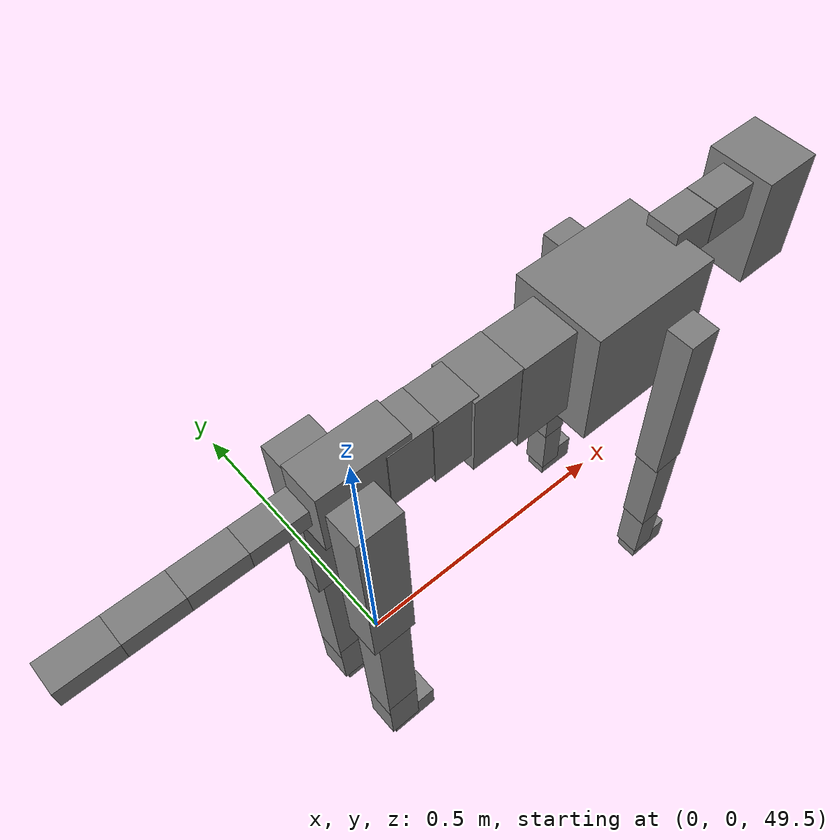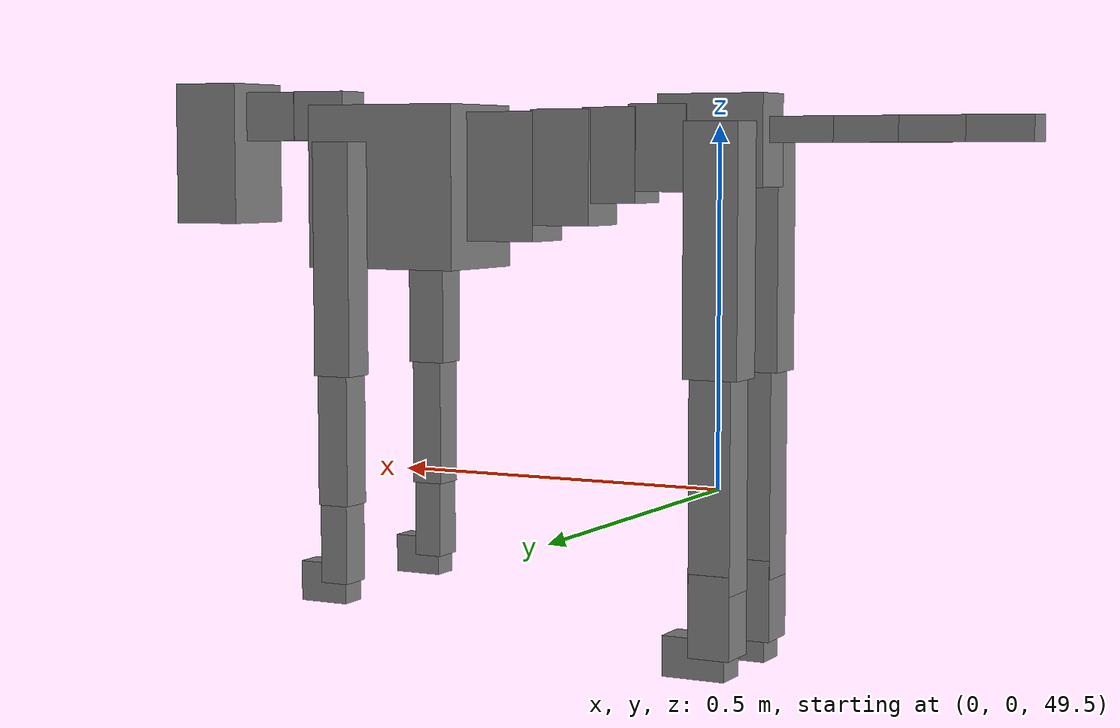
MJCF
<mujoco model="dog">

    <default>
        <joint armature="0.02" stiffness="1" damping="0.2" limited="true"/>
        <geom condim="3" friction="1 0.05 0.05" margin="0.01"/>
        <motor ctrllimited="true" ctrlrange="-1.0 1.0" forcelimited="true" gear="50"/>
    </default>

    <compiler inertiafromgeom="true" angle="radian"/>

    <option timestep="0.016" iterations="50" tolerance="1e-10" solver="Newton" jacobian="dense" cone="pyramidal"/>

    <size nconmax="20000" njmax="60000" nstack="5000000"/>
    <visual>
        <map force="0.1" zfar="30"/>
        <rgba haze="0.15 0.25 0.35 1"/>
        <quality shadowsize="2048"/>
        <global offwidth="800" offheight="800"/>
    </visual>

    <asset>
        <texture type="skybox" builtin="gradient" rgb1="0.3 0.5 0.7" rgb2="0 0 0" width="512" height="512"/>
        <texture name="texplane" type="2d" builtin="checker" rgb1=".2 .3 .4" rgb2=".1 0.15 0.2" width="512" height="512"
                 mark="cross" markrgb=".8 .8 .8"/>
        <texture name="texgeom" type="cube" builtin="flat" mark="cross" width="127" height="1278" rgb1="0.8 0.6 0.4"
                 rgb2="0.8 0.6 0.4" markrgb="1 1 1" random="0.01"/>

        <material name="matplane" reflectance="0.3" texture="texplane" texrepeat="1 1" texuniform="true"/>
        <material name="matgeom" texture="texgeom" texuniform="true" rgba="0.8 0.6 .4 1"/>
    </asset>

    <worldbody>
        <geom name="floor" pos="0 0 0" size="0 0 .25" type="plane" material="matplane" condim="3"/>

        <light directional="false" diffuse=".2 .2 .2" specular="0 0 0" pos="0 0 5" dir="0 0 -1" castshadow="false"/>
        <light mode="targetbodycom" target="torso" directional="false" diffuse=".8 .8 .8" specular="0.3 0.3 0.3"
               pos="0 0 4.0" dir="0 0 -1"/>

        <body name="root" pos="0 0 50">
            <freejoint name="root_1"/>
            <geom type="box" pos="0 0 -0.02" size="0.0774  0.0358  0.063" density="2030"/>

            <body name="spine1" pos="0.054 0 0">
                <joint name="spine1_y" axis="0 1 0" range="0 0.7" limited="true"/>
                <geom type="box" pos="0.02375 0 -0.03" size="0.04375  0.0375  0.05985" density="2030"/>

                <body name="spine2" pos="0.0612 0 0">
                    <joint name="spine2_y" axis="0 1 0" range="-0.15 0.15" limited="true"/>
                    <geom type="box" pos="0.03555  0  -0.04" size="0.04055  0.039  0.06615" density="2030"/>

                    <body name="spine3" pos="0.0730 0 0">
                        <joint name="spine3_y" axis="0 1 0" range="-0.15 0.15" limited="true"/>
                        <geom type="box" pos="0.03555  0  -0.057" size="0.04555  0.0445  0.081" density="2030"/>

                        <body name="spine4" pos="0.0780 0 0">
                            <joint name="spine4_y" axis="0 1 0" range="-0.15 0.15" limited="true"/>
                            <geom type="box" pos="0.05265  0  -0.07" size="0.05265  0.045  0.09135" density="2030"/>

                            <body name="torso" pos="0.1082 0 0">
                                <joint name="torso_y" axis="0 1 0" range="-0.15 0.15" limited="true"/>
                                <geom type="box" pos="0.11925  0  -0.085" size="0.11925  0.085  0.11745"
                                      density="2030"/>

                                <body name="neck1" pos="0.2160  0   0.0180">
                                    <joint name="neck1_y" axis="0 1 0" range="-1.2  -1" limited="true"/>
                                    <geom type="box" pos="0.0423  0  0" size="0.0423  0.03  0.036" density="2325"/>

                                    <body name="neck2" pos="0.0853  0  0">
                                        <joint name="neck2_y" axis="0 1 0" range="0.1  0" limited="true"/>
                                        <geom type="box" pos="0.0423  0  0" size="0.0423  0.03  0.036" density="2325"/>

                                        <body name="head" pos="0.0853  0  0">
                                            <joint name="head_y" axis="0 1 0" range="-0.3  -0.2" limited="true"/>
                                            <geom type="box" pos="0.0531  0  -0.055" size="0.0531  0.06  0.1044"
                                                  density="4030"/>

                                        </body>
                                    </body>
                                </body>

                                <body name="front_shoulder" pos="0.156  0   -0.0480">
                                    <joint name="front_shoulder_y" axis="0 1 0" range="-1 1.5" limited="true"/>
                                    <geom type="box" pos="0 0.13 -0.1391" size="0.0292  0.0250  0.1658" density="1158"/>
                                    <geom type="box" pos="0 -0.13 -0.1391" size="0.0292  0.0250  0.1658"
                                          density="1158"/>

                                    <body name="front_elbow" pos="0  0  -0.2782">
                                        <joint name="front_elbow_y" axis="0 1 0" range="-2 0" limited="true"/>
                                        <geom type="box" pos="0 0.13 -0.1059" size="0.0238  0.0244  0.1059"
                                              density="1081"/>
                                        <geom type="box" pos="0 -0.13 -0.1059" size="0.0238  0.0244  0.1059"
                                              density="1081"/>

                                        <body name="front_wrist" pos="0  0  -0.2117">
                                            <joint name="front_wrist_y" axis="0 1 0" range="-0.2 0" limited="true"/>
                                            <geom type="box" pos="0 0.13 -0.0495" size="0.0213  0.0236  0.0626"
                                                  density="1664"/>
                                            <geom type="box" pos="0 -0.13 -0.0495" size="0.0213  0.0236  0.0626"
                                                  density="1664"/>

                                            <body name="front_finger_end" pos="0  0  -0.0990">
                                                <joint name="front_finger_y" axis="0 1 0" range="-0.4 1"
                                                       limited="true"/>
                                                <geom type="box" pos="0.0201  0.13  -0.0135"
                                                      size="0.0369  0.0201  0.0285" density="1515"/>
                                                <geom type="box" pos="0.0201  -0.13  -0.0135"
                                                      size="0.0369  0.0201  0.0285" density="1515"/>

                                            </body>

                                        </body>
                                    </body>
                                </body>

                            </body>
                        </body>
                    </body>
                </body>
            </body>

            <body name="back_hip" pos="-0.03 0 -0.018">
                <joint name="back_hip_y" axis="0 1 0" range="-1.5 0.3" limited="true"/>
                <geom type="box" pos="0 0.07 -0.1488" size="0.0394  0.0309  0.1716" density="1154"/>
                <geom type="box" pos="0 -0.07 -0.1488" size="0.0394  0.0309  0.1716" density="1154"/>

                <body name="back_knee" pos="0  0  -0.2975">
                    <joint name="back_knee_y" axis="0 1 0" range="0 2.8" limited="true"/>
                    <geom type="box" pos="0 0.07 -0.1482" size="0.0302  0.0298  0.1638" density="1227"/>
                    <geom type="box" pos="0 -0.07 -0.1482" size="0.0302  0.0298  0.1638" density="1227"/>

                    <body name="back_ankle" pos="0  0  -0.2964">
                        <joint name="back_ankle_y" axis="0 1 0" range="-2.2 0" limited="true"/>
                        <geom type="box" pos="0 0.07 -0.0460" size="0.0300  0.0300  0.0573" density="1284"/>
                        <geom type="box" pos="0 -0.07 -0.0460" size="0.0300  0.0300  0.0573" density="1284"/>

                        <body name="back_toe_end" pos="0  0  -0.0920">
                            <joint name="back_toe_y" axis="0 1 0" range="-0.4 1" limited="true"/>
                            <geom type="box" pos="0.0249  0.07  -0.0131" size="0.0457  0.0249  0.0281" density="1515"/>
                            <geom type="box" pos="0.0249  -0.07  -0.0131" size="0.0457  0.0249  0.0281" density="1515"/>

                        </body>
                    </body>
                </body>
            </body>

            <body name="tail1" pos="-0.074 0 -0.006">
                <joint name="tail1_y" axis="0 1 0" range="-0.2 0.2" limited="true"/>
                <geom type="box" pos="-0.0536  0  0" size="0.045  0.025  0.0175" density="1587"/>

                <body name="tail2" pos="-0.09 0 0">
                    <joint name="tail2_y" axis="0 1 0" range="-0.2 0.2" limited="true"/>
                    <geom type="box" pos="-0.0536  0  0" size="0.045  0.025  0.0175" density="1587"/>

                    <body name="tail3" pos="-0.09 0 0">
                        <joint name="tail3_y" axis="0 1 0" range="-0.2 0.2" limited="true"/>
                        <geom type="box" pos="-0.0536  0  0" size="0.045  0.025  0.0175" density="1587"/>

                        <body name="tail4" pos="-0.09 0 0">
                            <joint name="tail4_y" axis="0 1 0" range="-0.2 0.2" limited="true"/>
                            <geom type="box" pos="-0.0536  0  0" size="0.045  0.025  0.0175" density="1587"/>

                        </body>
                    </body>
                </body>
            </body>
        </body>
    </worldbody>

    <actuator>
        <motor joint="spine1_y" forcerange="-150 150     "/>
        <motor joint="spine2_y" forcerange="-150 150     "/>
        <motor joint="spine3_y" forcerange="-150 150     "/>
        <motor joint="spine4_y" forcerange="-150 150     "/>
        <motor joint="torso_y" forcerange="-150 150     "/>
        <motor joint="neck1_y" forcerange="-100 100       "/>
        <motor joint="neck2_y" forcerange="-100 100       "/>
        <motor joint="head_y" forcerange="-150 150       "/>
        <motor joint="front_shoulder_y" forcerange="-112.11 154.52"/>
        <motor joint="front_elbow_y" forcerange="-129.16 147.98"/>
        <motor joint="front_wrist_y" forcerange="-94.28 94.91"/>
        <motor joint="front_finger_y" forcerange="-36.64 30.71"/>
        <motor joint="back_hip_y" forcerange="-274.76 337.02"/>
        <motor joint="back_knee_y" forcerange="-269.05 364.58"/>
        <motor joint="back_angle_y" forcerange="-232.20 147.84"/>
        <motor joint="back_toe_y" forcerange="-53.57 65.90"/>
        <motor joint="tail1_y" forcerange="-50 50     "/>
        <motor joint="tail2_y" forcerange="-50 50     "/>
        <motor joint="tail3_y" forcerange="-50 50     "/>
        <motor joint="tail4_y" forcerange="-50 50     "/>
    </actuator>
</mujoco>
